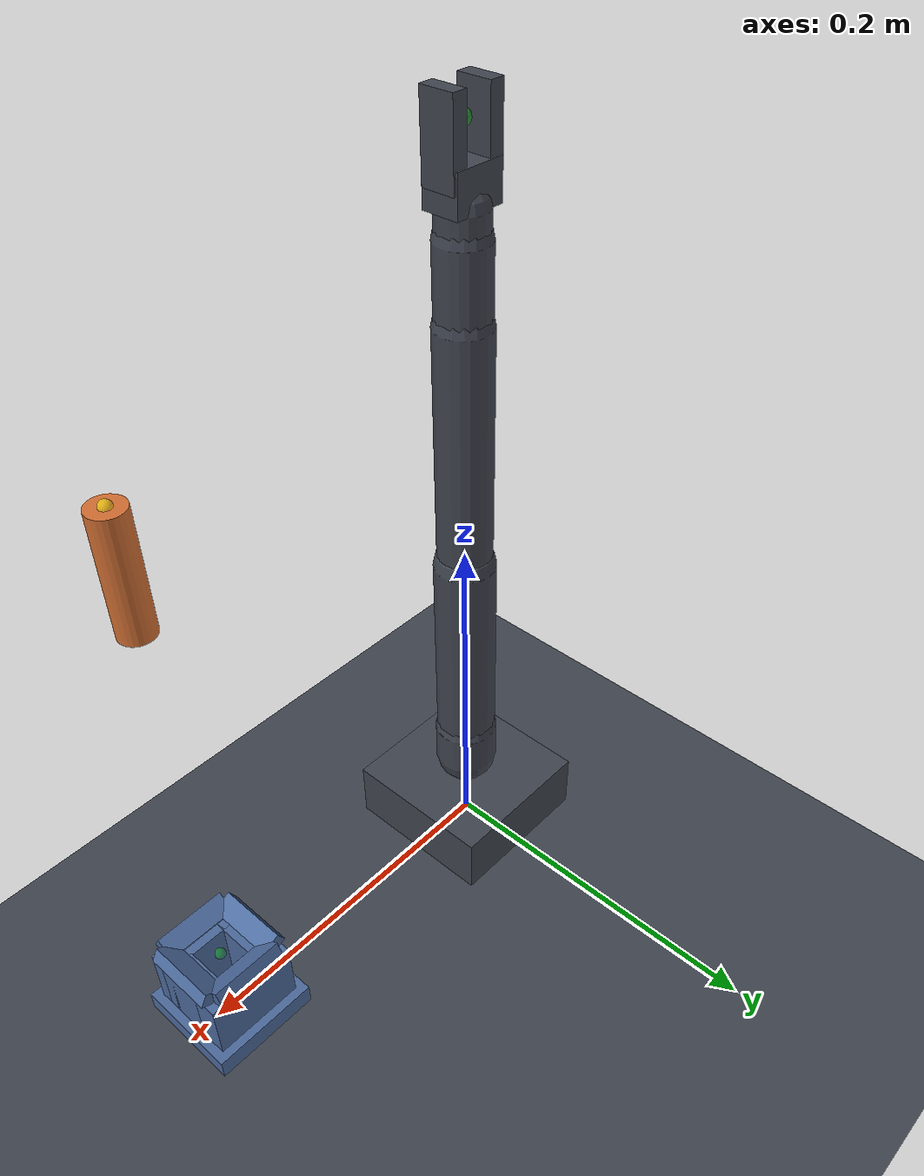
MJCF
<mujoco model="so101_peg_insert">
  <include file="so101_arm.xml"/>

  <worldbody>
    <body name="fixture" pos="0.190 0 0">
      <geom name="fix_base" type="box" size="0.030 0.030 0.006" pos="0 0 0.006"
            material="socket" friction="0.7 0.01 0.001" condim="4"/>
      <geom name="fix_wall_xp" type="box" size="0.0075 0.0175 0.018" pos="0.0175 0 0.030"
            material="socket" friction="0.35 0.01 0.001" condim="4"/>
      <geom name="fix_wall_xn" type="box" size="0.0075 0.0175 0.018" pos="-0.0175 0 0.030"
            material="socket" friction="0.35 0.01 0.001" condim="4"/>
      <geom name="fix_wall_yp" type="box" size="0.025 0.0075 0.018" pos="0 0.0175 0.030"
            material="socket" friction="0.35 0.01 0.001" condim="4"/>
      <geom name="fix_wall_yn" type="box" size="0.025 0.0075 0.018" pos="0 -0.0175 0.030"
            material="socket" friction="0.35 0.01 0.001" condim="4"/>
      <geom name="fix_lip_xp" type="box" size="0.006 0.020 0.004" pos="0.020 0 0.052"
            euler="0 -0.5 0" material="socket" friction="0.3 0.01 0.001" condim="4"/>
      <geom name="fix_lip_xn" type="box" size="0.006 0.020 0.004" pos="-0.020 0 0.052"
            euler="0 0.5 0" material="socket" friction="0.3 0.01 0.001" condim="4"/>
      <geom name="fix_lip_yp" type="box" size="0.020 0.006 0.004" pos="0 0.020 0.052"
            euler="0.5 0 0" material="socket" friction="0.3 0.01 0.001" condim="4"/>
      <geom name="fix_lip_yn" type="box" size="0.020 0.006 0.004" pos="0 -0.020 0.052"
            euler="-0.5 0 0" material="socket" friction="0.3 0.01 0.001" condim="4"/>
      <site name="hole_axis" pos="0 0 0.048" size="0.003" rgba="0 1 0 0.3"/>
    </body>

    <body name="peg" pos="0.190 0 0.30">
      <freejoint name="peg_free"/>
      <geom name="peg_g" type="cylinder" size="0.0085 0.030" material="workpiece"
            friction="0.35 0.01 0.001" condim="4" density="1200"
            solref="0.006 1" solimp="0.96 0.995 0.001"/>
      <!-- The far end of the peg. Its local +z runs along the tool axis, so the
           protruding end is at +half-length, not -half-length. -->
      <site name="peg_tip" pos="0 0 0.030" size="0.003" rgba="1 1 0 0.5"/>
    </body>
  </worldbody>

  <equality>
    <!-- Grasp. relpose centres the peg 44 mm out along the tool axis: 26 mm of
         it sits between the jaws and 34 mm protrudes past their tips. -->
    <weld name="grasp" body1="tool" body2="peg" relpose="0 0 0.044 1 0 0 0"
          solref="0.002 1" solimp="0.98 0.999 0.001"/>
  </equality>
</mujoco>

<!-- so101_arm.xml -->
<mujocoinclude>
  <compiler angle="radian" autolimits="true"/>

  <option timestep="0.00166666667" integrator="implicitfast" cone="elliptic" impratio="10"
          gravity="0 0 -9.81"/>

  <visual>
    <global offwidth="640" offheight="480"/>
    <quality shadowsize="2048"/>
  </visual>

  <default>
    <default class="so101">
      <!-- armature is the STS3215's reflected rotor inertia through its gearbox;
           without it the position servos ring at the 500 Hz physics rate. -->
      <joint damping="0.6" armature="0.028" frictionloss="0.015"/>
      <position kp="34" kv="1.8" forcerange="-2.94 2.94"/>
      <geom type="capsule" size="0.016" density="700" friction="0.8 0.01 0.001"
            rgba="0.25 0.27 0.31 1" condim="4" solref="0.008 1" solimp="0.95 0.99 0.001"/>
      <default class="so101_visual">
        <geom contype="0" conaffinity="0" group="2" density="0"/>
      </default>
    </default>
  </default>

  <asset>
    <texture name="grid" type="2d" builtin="checker" rgb1="0.22 0.24 0.27" rgb2="0.28 0.30 0.34"
             width="300" height="300"/>
    <material name="grid" texture="grid" texrepeat="8 8" reflectance="0.05"/>
    <material name="bench" rgba="0.72 0.70 0.66 1" reflectance="0.02"/>
    <material name="steel" rgba="0.55 0.57 0.60 1" reflectance="0.15"/>
    <material name="workpiece" rgba="0.83 0.44 0.20 1"/>
    <material name="socket" rgba="0.30 0.42 0.62 1"/>
  </asset>

  <worldbody>
    <light name="key" pos="0.35 -0.35 0.85" dir="-0.35 0.35 -0.85" diffuse="0.7 0.7 0.7"/>
    <light name="fill" pos="-0.30 0.30 0.60" dir="0.30 -0.30 -0.60" diffuse="0.3 0.3 0.3"/>
    <geom name="bench" type="plane" size="1 1 0.01" material="grid" condim="4"
          friction="0.9 0.01 0.001"/>

    <!-- Fixed overhead camera, looking down the +x working direction. -->
    <camera name="top" pos="0.26 -0.42 0.40" xyaxes="0.86 0.51 0 -0.22 0.37 0.90"/>

    <body name="base" pos="0 0 0">
      <geom name="base_plate" type="box" size="0.045 0.045 0.018" pos="0 0 0.018"
            class="so101" material="steel" contype="0" conaffinity="0"/>

      <body name="shoulder" pos="0 0 0.0542">
        <joint name="shoulder_pan" class="so101" axis="0 0 1" range="-1.92 1.92"/>
        <geom name="shoulder_g" class="so101" fromto="0 0 -0.004 0 0 0.020" size="0.018"/>

        <body name="upper_arm" pos="0 0 0.024">
          <joint name="shoulder_lift" class="so101" axis="0 1 0" range="-1.75 1.75"/>
          <geom name="upper_arm_g" class="so101" fromto="0 0 0 0 0 0.1159" size="0.017"/>

          <body name="forearm" pos="0 0 0.1159">
            <joint name="elbow_flex" class="so101" axis="0 1 0" range="-1.69 1.69"/>
            <geom name="forearm_g" class="so101" fromto="0 0 0 0 0 0.1350" size="0.015"/>

            <body name="wrist" pos="0 0 0.1350">
              <joint name="wrist_flex" class="so101" axis="0 1 0" range="-1.92 1.92"/>
              <geom name="wrist_g" class="so101" fromto="0 0 0 0 0 0.0400" size="0.014"/>

              <body name="wrist_roll_link" pos="0 0 0.0400">
                <joint name="wrist_roll" class="so101" axis="0 0 1" range="-2.79 2.79"/>
                <geom name="wrist_roll_g" class="so101" fromto="0 0 0 0 0 0.0140" size="0.013"/>

                <!-- Everything distal to this joint is what the wrist F/T sensor
                     sees: the tool mount, the jaws, and whatever is grasped. -->
                <body name="tool" pos="0 0 0.0240">
                  <site name="tool_ft" pos="0 0 0" size="0.004" rgba="1 0 0 0.4"/>
                  <geom name="tool_mount" class="so101" type="box" size="0.014 0.010 0.010"
                        pos="0 0 0" material="steel" contype="0" conaffinity="0"/>
                  <site name="tool_center" pos="0 0 0.026" size="0.004" rgba="0 1 0 0.4"/>

                  <!-- Wrist camera: looks along the tool axis, offset behind the
                       jaws the way an SO-101 wrist cam is mounted. -->
                  <camera name="wrist" pos="0 -0.052 0.008" xyaxes="1 0 0 0 0.42 0.91"/>

                  <body name="jaw_fixed" pos="0.011 0 0.020">
                    <geom name="jaw_fixed_g" class="so101" type="box" size="0.004 0.009 0.020"
                          material="steel" contype="0" conaffinity="0"/>
                  </body>
                  <body name="jaw_moving" pos="-0.011 0 0.020">
                    <joint name="gripper" class="so101" type="slide" axis="1 0 0"
                           range="-0.004 0.020" damping="4" armature="0.004"/>
                    <geom name="jaw_moving_g" class="so101" type="box" size="0.004 0.009 0.020"
                          material="steel" contype="0" conaffinity="0"/>
                  </body>
                </body>
              </body>
            </body>
          </body>
        </body>
      </body>
    </body>
  </worldbody>

  <actuator>
    <position name="shoulder_pan" class="so101" joint="shoulder_pan" ctrlrange="-1.92 1.92"/>
    <position name="shoulder_lift" class="so101" joint="shoulder_lift" ctrlrange="-1.75 1.75"/>
    <position name="elbow_flex" class="so101" joint="elbow_flex" ctrlrange="-1.69 1.69"/>
    <position name="wrist_flex" class="so101" joint="wrist_flex" ctrlrange="-1.92 1.92"/>
    <position name="wrist_roll" class="so101" joint="wrist_roll" ctrlrange="-2.79 2.79"/>
    <position name="gripper" class="so101" joint="gripper" kp="120" kv="8"
              ctrlrange="-0.004 0.020" forcerange="-25 25"/>
  </actuator>

  <sensor>
    <!-- Ground truth only. Never fed to a policy or to the controller. -->
    <force name="gt_tool_force" site="tool_ft"/>
    <torque name="gt_tool_torque" site="tool_ft"/>
  </sensor>
</mujocoinclude>
